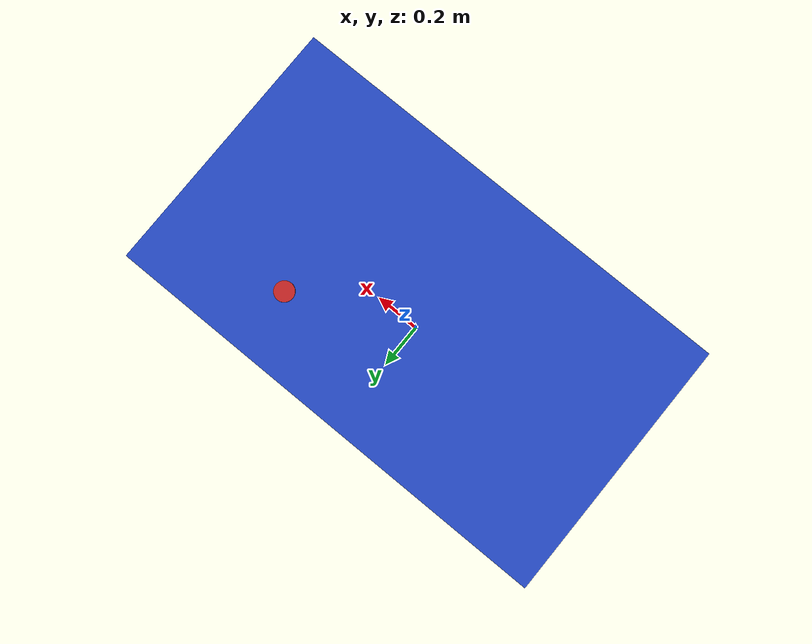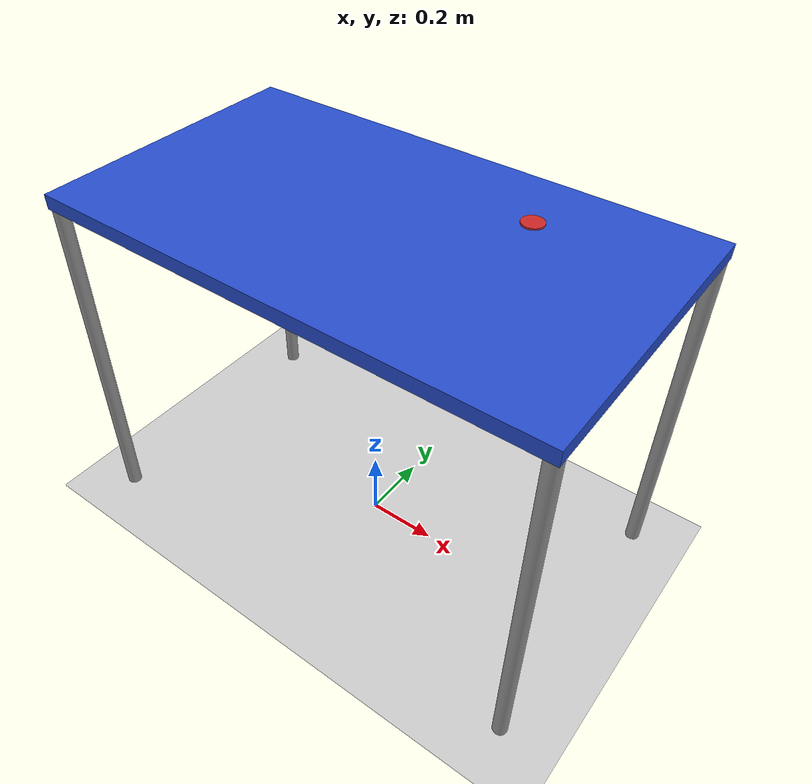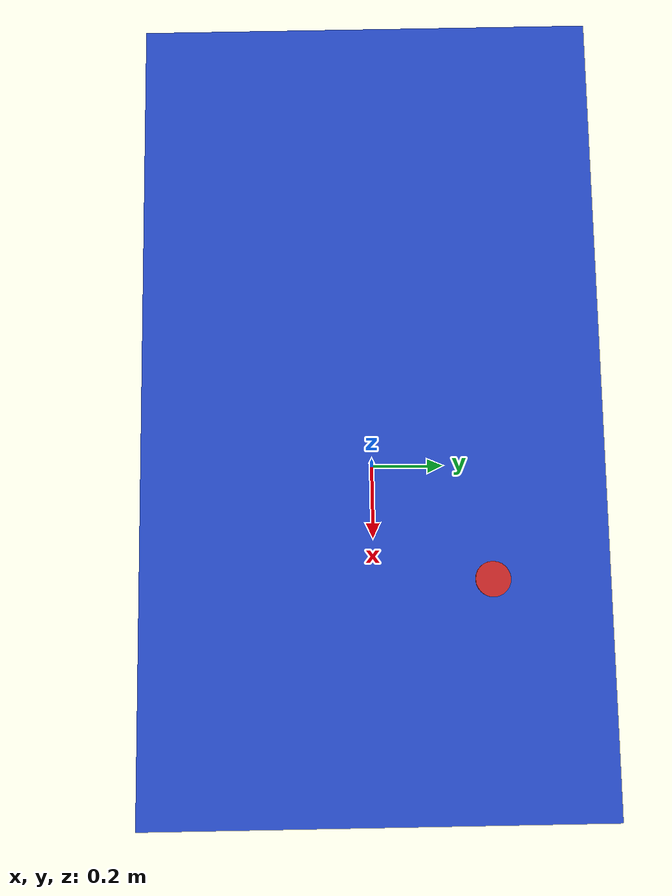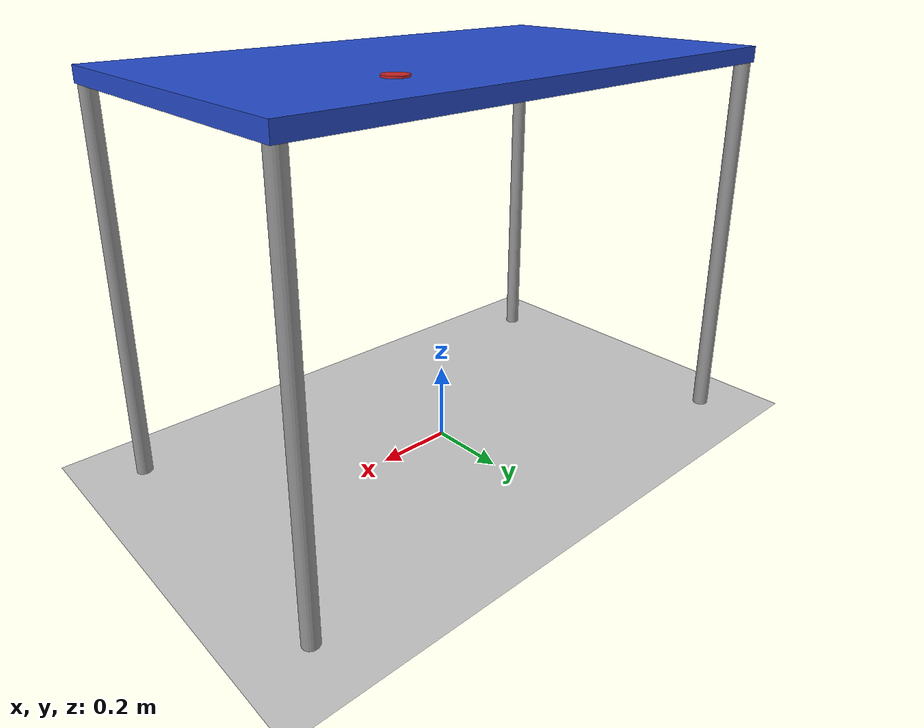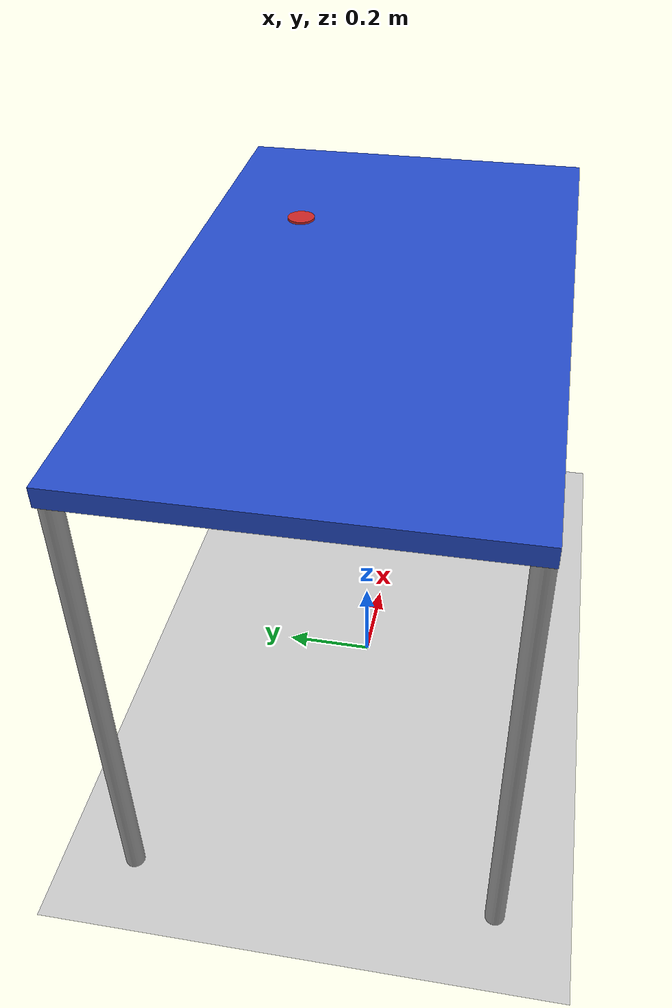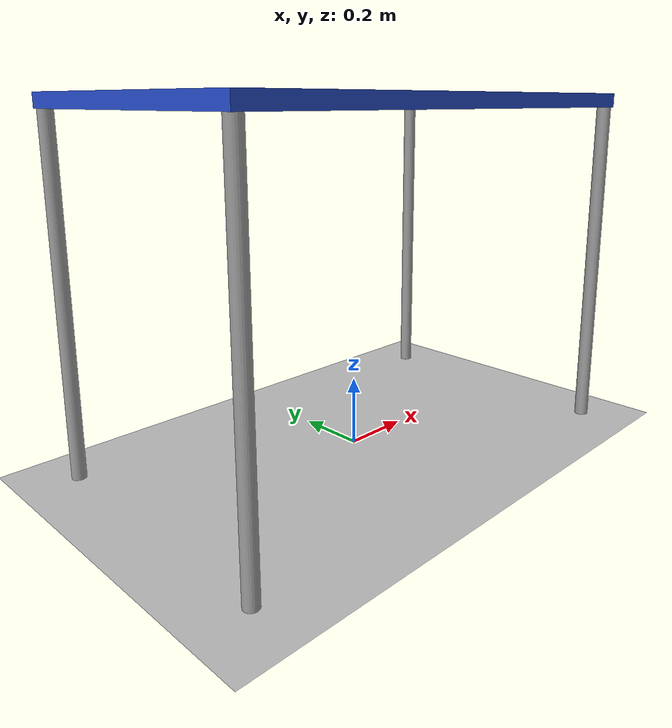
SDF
<sdf version="1.6">
 <world name="default">
  <include><uri>model://ground_plane</uri></include>
  <include><uri>model://sun</uri></include>
  <model name="table">
   <static>1</static>
   <link name="link">
    <collision name="surface">
     <pose>0 0 1 0 -0 0</pose>
     <geometry><box><size>1.5 0.8 0.03</size></box></geometry>
     <surface><friction><ode><mu>0.6</mu><mu2>0.6</mu2></ode></friction></surface>
    </collision>
    <visual name="visual1">
     <pose>0 0 1 0 -0 0</pose>
     <geometry><box><size>1.4 0.8 0.04</size></box></geometry>
     <material>
      <script><uri>file://media/materials/scripts/gazebo.material</uri><name>Gazebo/Blue</name></script>
     </material>
    </visual>
    <collision name="front_left_leg">
     <pose>0.68 0.38 0.5 0 -0 0</pose>
     <geometry><cylinder><radius>0.02</radius><length>1</length></cylinder></geometry>
    </collision>
    <visual name="front_left_leg">
     <pose>0.68 0.38 0.5 0 -0 0</pose>
     <geometry><cylinder><radius>0.02</radius><length>1</length></cylinder></geometry>
     <material>
      <script><uri>file://media/materials/scripts/gazebo.material</uri><name>Gazebo/Grey</name></script>
     </material>
    </visual>
    <collision name="front_right_leg">
     <pose>0.68 -0.38 0.5 0 -0 0</pose>
     <geometry><cylinder><radius>0.02</radius><length>1</length></cylinder></geometry>
    </collision>
    <visual name="front_right_leg">
     <pose>0.68 -0.38 0.5 0 -0 0</pose>
     <geometry><cylinder><radius>0.02</radius><length>1</length></cylinder></geometry>
     <material>
      <script><uri>file://media/materials/scripts/gazebo.material</uri><name>Gazebo/Grey</name></script>
     </material>
    </visual>
    <collision name="back_right_leg">
     <pose>-0.68 -0.38 0.5 0 -0 0</pose>
     <geometry><cylinder><radius>0.02</radius><length>1</length></cylinder></geometry>
    </collision>
    <visual name="back_right_leg">
     <pose>-0.68 -0.38 0.5 0 -0 0</pose>
     <geometry><cylinder><radius>0.02</radius><length>1</length></cylinder></geometry>
     <material>
      <script><uri>file://media/materials/scripts/gazebo.material</uri><name>Gazebo/Grey</name></script>
     </material>
    </visual>
    <collision name="back_left_leg">
     <pose>-0.68 0.38 0.5 0 -0 0</pose>
     <geometry><cylinder><radius>0.02</radius><length>1</length></cylinder></geometry>
    </collision>
    <visual name="back_left_leg">
     <pose>-0.68 0.38 0.5 0 -0 0</pose>
     <geometry><cylinder><radius>0.02</radius><length>1</length></cylinder></geometry>
     <material>
      <script><uri>file://media/materials/scripts/gazebo.material</uri><name>Gazebo/Grey</name></script>
     </material>
    </visual>
   </link>
  </model>
  <model name="tomato_slice">
   <pose frame="world">0.3 0.2 1.02 0 -0 0</pose>
   <link name="link">
    <inertial>
     <mass>1</mass>
     <inertia><ixx>0.145833</ixx><ixy>0</ixy><ixz>0</ixz><iyy>0.145833</iyy><iyz>0</iyz><izz>0.125</izz></inertia>
    </inertial>
    <collision name="collision">
     <geometry><cylinder><radius>0.03</radius><length>0.01</length></cylinder></geometry>
    </collision>
    <visual name="visual">
     <geometry><cylinder><radius>0.03</radius><length>0.01</length></cylinder></geometry>
     <material>
      <script><name>Gazebo/Red</name><uri>file://media/materials/scripts/gazebo.material</uri></script>
     </material>
    </visual>
   </link>
  </model>
 </world>
</sdf>
